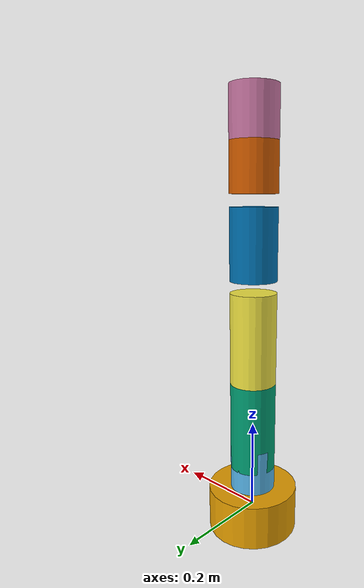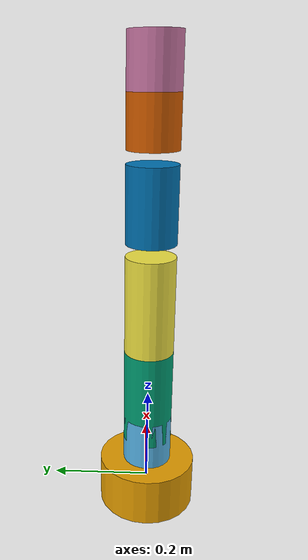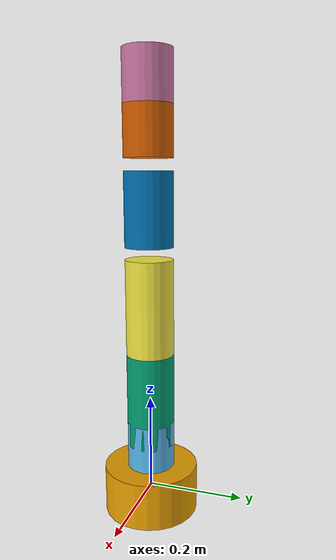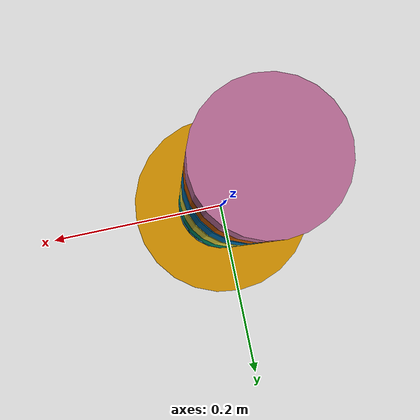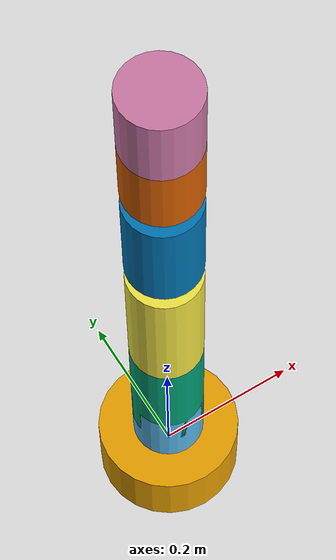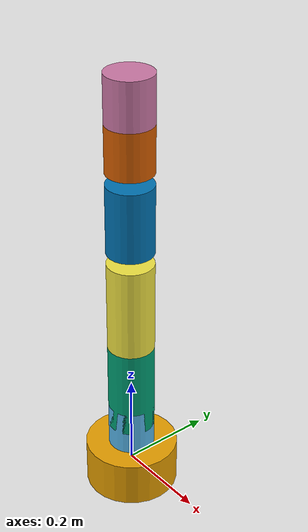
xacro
<?xml version="1.0"?>
<robot xmlns:xacro="http://www.ros.org/wiki/xacro" name="my_robot">
    <!-- Base Link -->
    <link name="base_link">
        <visual>
            <geometry>
                <cylinder radius="0.1" length="0.1"/>
            </geometry>
        </visual>
    </link>

    <!-- Link 1 -->
    <link name="link1">
        <visual>
            <geometry>
                <cylinder radius="0.05" length="0.1"/>
            </geometry>
        </visual>
    </link>

    <!-- Link 2 -->
    <link name="link2">
        <visual>
            <geometry>
                <cylinder radius="0.05" length="0.2"/>
            </geometry>
        </visual>
    </link>

    <!-- Link 3 -->
    <link name="link3">
        <visual>
            <geometry>
                <cylinder radius="0.05" length="0.2"/>
            </geometry>
        </visual>
    </link>

    <!-- Link 4 -->
    <link name="link4">
        <visual>
            <geometry>
                <cylinder radius="0.05" length="0.15"/>
            </geometry>
        </visual>
    </link>

    <!-- Link 5 -->
    <link name="link5">
        <visual>
            <geometry>
                <cylinder radius="0.05" length="0.1"/>
            </geometry>
        </visual>
    </link>

    <!-- Link 6 -->
    <link name="link6">
        <visual>
            <geometry>
                <cylinder radius="0.05" length="0.1"/>
            </geometry>
        </visual>
    </link>

    <!-- Joints -->
    <joint name="joint1" type="revolute">
        <parent link="base_link"/>
        <child link="link1"/>
        <origin xyz="0 0 0.1" rpy="0 0 0"/>
        <axis xyz="0 0 1"/>
        <limit lower="-3.14" upper="3.14" effort="100" velocity="1"/>
    </joint>

    <joint name="joint2" type="revolute">
        <parent link="link1"/>
        <child link="link2"/>
        <origin xyz="0 0 0.1" rpy="0 0 0"/>
        <axis xyz="0 1 0"/>
        <limit lower="-3.14" upper="3.14" effort="100" velocity="1"/>
    </joint>

    <joint name="joint3" type="revolute">
        <parent link="link2"/>
        <child link="link3"/>
        <origin xyz="0 0 0.2" rpy="0 0 0"/>
        <axis xyz="0 1 0"/>
        <limit lower="-3.14" upper="3.14" effort="100" velocity="1"/>
    </joint>

    <joint name="joint4" type="revolute">
        <parent link="link3"/>
        <child link="link4"/>
        <origin xyz="0 0 0.2" rpy="0 0 0"/>
        <axis xyz="1 0 0"/>
        <limit lower="-3.14" upper="3.14" effort="100" velocity="1"/>
    </joint>

    <joint name="joint5" type="revolute">
        <parent link="link4"/>
        <child link="link5"/>
        <origin xyz="0 0 0.15" rpy="0 0 0"/>
        <axis xyz="0 1 0"/>
        <limit lower="-3.14" upper="3.14" effort="100" velocity="1"/>
    </joint>

    <joint name="joint6" type="revolute">
        <parent link="link5"/>
        <child link="link6"/>
        <origin xyz="0 0 0.1" rpy="0 0 0"/>
        <axis xyz="1 0 0"/>
        <limit lower="-3.14" upper="3.14" effort="100" velocity="1"/>
    </joint>

    <!-- ROS2 Control -->
    <!-- Individual ros2_control sections for each joint -->
    <ros2_control name="joint1_controller" type="actuator">
        <hardware>
            <plugin>my_robot_hardware/SingleJointHardware</plugin>
            <param name="can_interface">can0</param>
            <param name="can_id">0x01</param>
        </hardware>
        <joint name="joint1">
            <command_interface name="position"/>
            <state_interface name="position"/>
            <state_interface name="velocity"/>
            <state_interface name="effort"/>
        </joint>
    </ros2_control>

    <ros2_control name="joint2_controller" type="actuator">
        <hardware>
            <plugin>my_robot_hardware/SingleJointHardware</plugin>
            <param name="can_interface">can0</param>
            <param name="can_id">0x02</param>
        </hardware>
        <joint name="joint2">
            <command_interface name="position"/>
            <state_interface name="position"/>
            <state_interface name="velocity"/>
            <state_interface name="effort"/>
        </joint>
    </ros2_control>

    <ros2_control name="joint3_controller" type="actuator">
        <hardware>
            <plugin>my_robot_hardware/SingleJointHardware</plugin>
            <param name="can_interface">can0</param>
            <param name="can_id">0x03</param>
        </hardware>
        <joint name="joint3">
            <command_interface name="position"/>
            <state_interface name="position"/>
            <state_interface name="velocity"/>
            <state_interface name="effort"/>
        </joint>
    </ros2_control>

    <ros2_control name="joint4_controller" type="actuator">
        <hardware>
            <plugin>my_robot_hardware/SingleJointHardware</plugin>
            <param name="can_interface">can0</param>
            <param name="can_id">0x04</param>
        </hardware>
        <joint name="joint4">
            <command_interface name="position"/>
            <state_interface name="position"/>
            <state_interface name="velocity"/>
            <state_interface name="effort"/>
        </joint>
    </ros2_control>

    <ros2_control name="joint5_controller" type="actuator">
        <hardware>
            <plugin>my_robot_hardware/SingleJointHardware</plugin>
            <param name="can_interface">can0</param>
            <param name="can_id">0x05</param>
        </hardware>
        <joint name="joint5">
            <command_interface name="position"/>
            <state_interface name="position"/>
            <state_interface name="velocity"/>
            <state_interface name="effort"/>
        </joint>
    </ros2_control>

    <ros2_control name="joint6_controller" type="actuator">
        <hardware>
            <plugin>my_robot_hardware/SingleJointHardware</plugin>
            <param name="can_interface">can0</param>
            <param name="can_id">0x06</param>
        </hardware>
        <joint name="joint6">
            <command_interface name="position"/>
            <state_interface name="position"/>
            <state_interface name="velocity"/>
            <state_interface name="effort"/>
        </joint>
    </ros2_control>
    <!-- Repeat for joints 3-6 -->
</robot>
